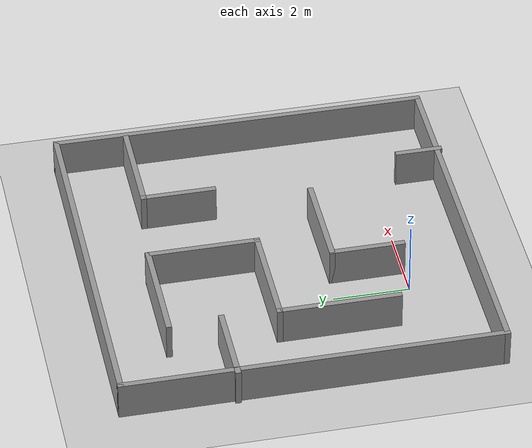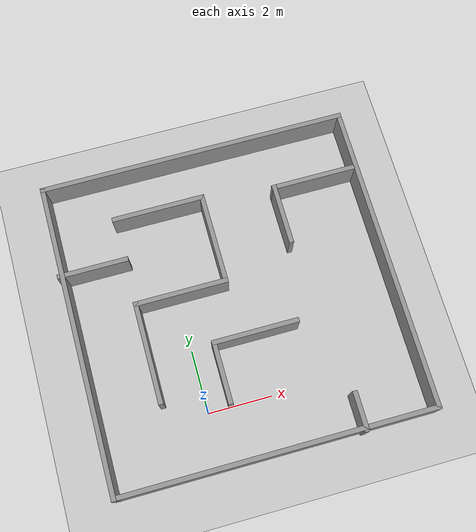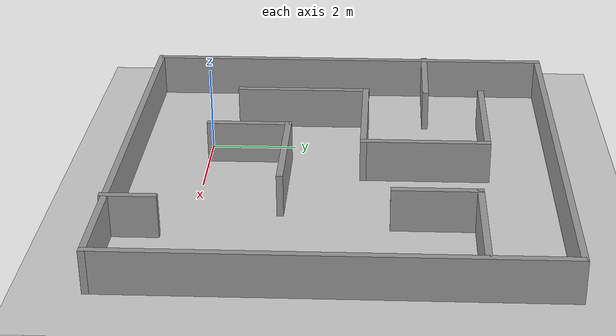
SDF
<sdf version="1.7">
 <world name="default">
  <light name="sun" type="directional">
   <pose>0 0 10 0 -0 0</pose>
   <diffuse>0.8 0.8 0.8 1</diffuse>
   <specular>0.2 0.2 0.2 1</specular>
   <attenuation>
    <range>1000</range>
    <constant>0.9</constant>
    <linear>0.01</linear>
    <quadratic>0.001</quadratic>
   </attenuation>
   <direction>-0.5 0.1 -0.9</direction>
   <spot><inner_angle>0</inner_angle><outer_angle>0</outer_angle><falloff>0</falloff></spot>
  </light>
  <model name="ground_plane">
   <static>1</static>
   <link name="link">
    <collision name="collision">
     <geometry><plane><normal>0 0 1</normal><size>100 100</size></plane></geometry>
     <surface>
      <contact><collide_bitmask>65535</collide_bitmask></contact>
      <friction><ode><mu>100</mu><mu2>50</mu2></ode></friction>
     </surface>
    </collision>
    <visual name="visual">
     <cast_shadows>0</cast_shadows>
     <geometry><plane><normal>0 0 1</normal><size>100 100</size></plane></geometry>
     <material>
      <script><uri>file://media/materials/scripts/gazebo.material</uri><name>Gazebo/Grey</name></script>
     </material>
    </visual>
   </link>
  </model>
  <gravity>0 0 -9.8</gravity>
  <magnetic_field>6e-06 2.3e-05 -4.2e-05</magnetic_field>
  <atmosphere type="adiabatic"/>
  <physics type="ode">
   <max_step_size>0.001</max_step_size>
   <real_time_factor>1</real_time_factor>
   <real_time_update_rate>1000</real_time_update_rate>
  </physics>
  <scene><ambient>0.4 0.4 0.4 1</ambient><background>0.7 0.7 0.7 1</background><shadows>1</shadows></scene>
  <audio><device>default</device></audio>
  <spherical_coordinates>
   <surface_model>EARTH_WGS84</surface_model>
   <latitude_deg>0</latitude_deg>
   <longitude_deg>0</longitude_deg>
   <elevation>0</elevation>
   <heading_deg>0</heading_deg>
  </spherical_coordinates>
  <model name="Floorplan">
   <pose>1.6335 3.156 0 0 -0 0</pose>
   <link name="Wall_0">
    <collision name="Wall_0_Collision">
     <geometry><box><size>10 0.15 1</size></box></geometry>
     <pose>0 0 0.5 0 -0 0</pose>
    </collision>
    <visual name="Wall_0_Visual">
     <pose>0 0 0.5 0 -0 0</pose>
     <geometry><box><size>10 0.15 1</size></box></geometry>
     <material>
      <script><uri>file://media/materials/scripts/gazebo.material</uri><name>Gazebo/Grey</name></script>
      <ambient>1 1 1 1</ambient>
     </material>
     <meta><layer>0</layer></meta>
    </visual>
    <pose>-4.8835 0.029 0 0 -0 1.5708</pose>
   </link>
   <link name="Wall_1">
    <collision name="Wall_1_Collision">
     <geometry><box><size>10 0.15 1</size></box></geometry>
     <pose>0 0 0.5 0 -0 0</pose>
    </collision>
    <visual name="Wall_1_Visual">
     <pose>0 0 0.5 0 -0 0</pose>
     <geometry><box><size>10 0.15 1</size></box></geometry>
     <material>
      <script><uri>file://media/materials/scripts/gazebo.material</uri><name>Gazebo/Grey</name></script>
      <ambient>1 1 1 1</ambient>
     </material>
     <meta><layer>0</layer></meta>
    </visual>
    <pose>0.0415 4.954 0 0 -0 0</pose>
   </link>
   <link name="Wall_10">
    <collision name="Wall_10_Collision">
     <geometry><box><size>2.75 0.15 1</size></box></geometry>
     <pose>0 0 0.5 0 -0 0</pose>
    </collision>
    <visual name="Wall_10_Visual">
     <pose>0 0 0.5 0 -0 0</pose>
     <geometry><box><size>2.75 0.15 1</size></box></geometry>
     <material>
      <script><uri>file://media/materials/scripts/gazebo.material</uri><name>Gazebo/Grey</name></script>
      <ambient>1 1 1 1</ambient>
     </material>
     <meta><layer>0</layer></meta>
    </visual>
    <pose>0.3795 -1.258 0 0 -0 3.14159</pose>
   </link>
   <link name="Wall_11">
    <collision name="Wall_11_Collision">
     <geometry><box><size>2 0.15 1</size></box></geometry>
     <pose>0 0 0.5 0 -0 0</pose>
    </collision>
    <visual name="Wall_11_Visual">
     <pose>0 0 0.5 0 -0 0</pose>
     <geometry><box><size>2 0.15 1</size></box></geometry>
     <material>
      <script><uri>file://media/materials/scripts/gazebo.material</uri><name>Gazebo/Grey</name></script>
      <ambient>1 1 1 1</ambient>
     </material>
     <meta><layer>0</layer></meta>
    </visual>
    <pose>-0.9205 -2.183 0 0 -0 -1.5708</pose>
   </link>
   <link name="Wall_13">
    <collision name="Wall_13_Collision">
     <geometry><box><size>2.25 0.15 1</size></box></geometry>
     <pose>0 0 0.5 0 -0 0</pose>
    </collision>
    <visual name="Wall_13_Visual">
     <pose>0 0 0.5 0 -0 0</pose>
     <geometry><box><size>2.25 0.15 1</size></box></geometry>
     <material>
      <script><uri>file://media/materials/scripts/gazebo.material</uri><name>Gazebo/Grey</name></script>
      <ambient>1 1 1 1</ambient>
     </material>
     <meta><layer>0</layer></meta>
    </visual>
    <pose>-3.9165 2.012 0 0 -0 0</pose>
   </link>
   <link name="Wall_15">
    <collision name="Wall_15_Collision">
     <geometry><box><size>2.75 0.15 1</size></box></geometry>
     <pose>0 0 0.5 0 -0 0</pose>
    </collision>
    <visual name="Wall_15_Visual">
     <pose>0 0 0.5 0 -0 0</pose>
     <geometry><box><size>2.75 0.15 1</size></box></geometry>
     <material>
      <script><uri>file://media/materials/scripts/gazebo.material</uri><name>Gazebo/Grey</name></script>
      <ambient>1 1 1 1</ambient>
     </material>
     <meta><layer>0</layer></meta>
    </visual>
    <pose>3.5425 3.092 0 0 -0 3.14159</pose>
   </link>
   <link name="Wall_16">
    <collision name="Wall_16_Collision">
     <geometry><box><size>2 0.15 1</size></box></geometry>
     <pose>0 0 0.5 0 -0 0</pose>
    </collision>
    <visual name="Wall_16_Visual">
     <pose>0 0 0.5 0 -0 0</pose>
     <geometry><box><size>2 0.15 1</size></box></geometry>
     <material>
      <script><uri>file://media/materials/scripts/gazebo.material</uri><name>Gazebo/Grey</name></script>
      <ambient>1 1 1 1</ambient>
     </material>
     <meta><layer>0</layer></meta>
    </visual>
    <pose>2.2425 2.167 0 0 -0 -1.5708</pose>
   </link>
   <link name="Wall_19">
    <collision name="Wall_19_Collision">
     <geometry><box><size>1.25 0.15 1</size></box></geometry>
     <pose>0 0 0.5 0 -0 0</pose>
    </collision>
    <visual name="Wall_19_Visual">
     <pose>0 0 0.5 0 -0 0</pose>
     <geometry><box><size>1.25 0.15 1</size></box></geometry>
     <material>
      <script><uri>file://media/materials/scripts/gazebo.material</uri><name>Gazebo/Grey</name></script>
      <ambient>1 1 1 1</ambient>
     </material>
     <meta><layer>0</layer></meta>
    </visual>
    <pose>2.7135 -4.404 0 0 -0 1.5708</pose>
   </link>
   <link name="Wall_2">
    <collision name="Wall_2_Collision">
     <geometry><box><size>10 0.15 1</size></box></geometry>
     <pose>0 0 0.5 0 -0 0</pose>
    </collision>
    <visual name="Wall_2_Visual">
     <pose>0 0 0.5 0 -0 0</pose>
     <geometry><box><size>10 0.15 1</size></box></geometry>
     <material>
      <script><uri>file://media/materials/scripts/gazebo.material</uri><name>Gazebo/Grey</name></script>
      <ambient>1 1 1 1</ambient>
     </material>
     <meta><layer>0</layer></meta>
    </visual>
    <pose>4.9665 0.029 0 0 -0 -1.5708</pose>
   </link>
   <link name="Wall_3">
    <collision name="Wall_3_Collision">
     <geometry><box><size>10 0.15 1</size></box></geometry>
     <pose>0 0 0.5 0 -0 0</pose>
    </collision>
    <visual name="Wall_3_Visual">
     <pose>0 0 0.5 0 -0 0</pose>
     <geometry><box><size>10 0.15 1</size></box></geometry>
     <material>
      <script><uri>file://media/materials/scripts/gazebo.material</uri><name>Gazebo/Grey</name></script>
      <ambient>1 1 1 1</ambient>
     </material>
     <meta><layer>0</layer></meta>
    </visual>
    <pose>0.0415 -4.896 0 0 -0 3.14159</pose>
   </link>
   <link name="Wall_5">
    <collision name="Wall_5_Collision">
     <geometry><box><size>3 0.15 1</size></box></geometry>
     <pose>0 0 0.5 0 -0 0</pose>
    </collision>
    <visual name="Wall_5_Visual">
     <pose>0 0 0.5 0 -0 0</pose>
     <geometry><box><size>3 0.15 1</size></box></geometry>
     <material>
      <script><uri>file://media/materials/scripts/gazebo.material</uri><name>Gazebo/Grey</name></script>
      <ambient>1 1 1 1</ambient>
     </material>
     <meta><layer>0</layer></meta>
    </visual>
    <pose>-1.4885 3.381 0 0 -0 0</pose>
   </link>
   <link name="Wall_6">
    <collision name="Wall_6_Collision">
     <geometry><box><size>3 0.15 1</size></box></geometry>
     <pose>0 0 0.5 0 -0 0</pose>
    </collision>
    <visual name="Wall_6_Visual">
     <pose>0 0 0.5 0 -0 0</pose>
     <geometry><box><size>3 0.15 1</size></box></geometry>
     <material>
      <script><uri>file://media/materials/scripts/gazebo.material</uri><name>Gazebo/Grey</name></script>
      <ambient>1 1 1 1</ambient>
     </material>
     <meta><layer>0</layer></meta>
    </visual>
    <pose>-0.0635 1.956 0 0 -0 -1.5708</pose>
   </link>
   <link name="Wall_7">
    <collision name="Wall_7_Collision">
     <geometry><box><size>3 0.15 1</size></box></geometry>
     <pose>0 0 0.5 0 -0 0</pose>
    </collision>
    <visual name="Wall_7_Visual">
     <pose>0 0 0.5 0 -0 0</pose>
     <geometry><box><size>3 0.15 1</size></box></geometry>
     <material>
      <script><uri>file://media/materials/scripts/gazebo.material</uri><name>Gazebo/Grey</name></script>
      <ambient>1 1 1 1</ambient>
     </material>
     <meta><layer>0</layer></meta>
    </visual>
    <pose>-1.4885 0.531 0 0 -0 3.14159</pose>
   </link>
   <link name="Wall_8">
    <collision name="Wall_8_Collision">
     <geometry><box><size>3.25 0.15 1</size></box></geometry>
     <pose>0 0 0.5 0 -0 0</pose>
    </collision>
    <visual name="Wall_8_Visual">
     <pose>0 0 0.5 0 -0 0</pose>
     <geometry><box><size>3.25 0.15 1</size></box></geometry>
     <material>
      <script><uri>file://media/materials/scripts/gazebo.material</uri><name>Gazebo/Grey</name></script>
      <ambient>1 1 1 1</ambient>
     </material>
     <meta><layer>0</layer></meta>
    </visual>
    <pose>-2.9135 -1.019 0 0 -0 -1.5708</pose>
   </link>
   <static>1</static>
  </model>
 </world>
</sdf>
